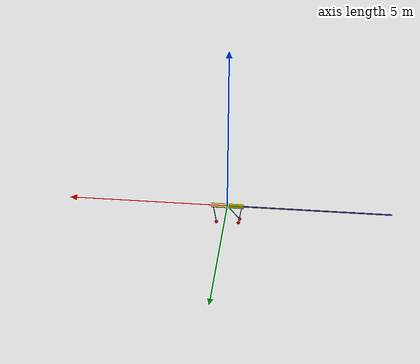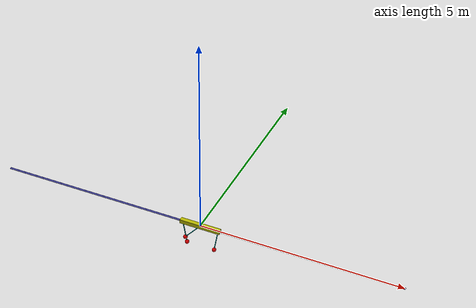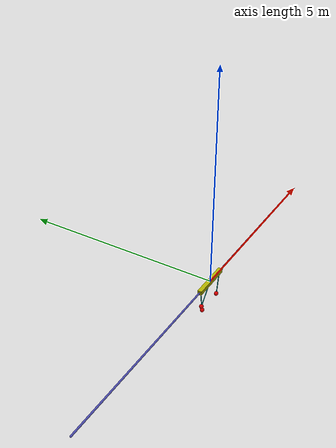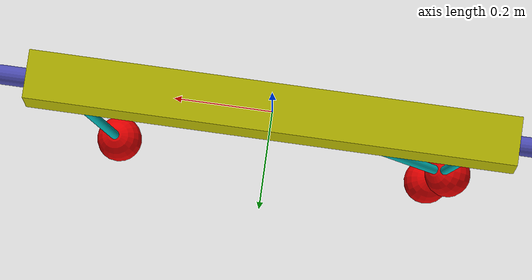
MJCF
<mujoco model="pendulum v1">
	<compiler inertiafromgeom="true"/>
	<default>
		<joint armature="0" damping="0" limited="true" />
		<!--friction=[滑り摩擦，ねじり摩擦，転がり摩擦]-->
		<geom contype="0" rgba="0.7 0.7 0 1" friction="0 0 0" condim="1"/>
		<tendon/>
		<motor ctrlrange="-3 3"/>
	</default>
	<option gravity="0 0 -9.81" integrator="RK4" timestep="0.02"/>
	<size nstack="3000"/>
	<worldbody>
		<geom name="rail" pos="0 0 0" quat="0.707 0 0.707 0" rgba="0.3 0.3 0.7 1" size="0.02 5" type="capsule"/>
		<body name="cart" pos="0 0 0" >
			<joint axis="1 0 0" damping="1" limited="true" name="slider" pos="0 0 0" range="-1 1" type="slide" frictionloss="0"/>
			<geom name="cart" pos="0 0 0" quat="0.707 0 0.707 0" size="0.05 0.05 .5" type="box" density="500"/>
			<body name="pole1" pos="-0.45 0 0" euler="0 -10 0">
				<joint axis="0 -1 0" name="hinge2" pos="0 0.5 0" range="-180 180" type="hinge"/>
				<geom pos="0 0 -0.3" name="cpole2" rgba="0 0.7 0.7 1" size="0.01 0.3" type="capsule" />
				<body name="toe2" pos="0 0 -0.6"/>
					<geom pos="0 0 -0.6" name="ball2" size="0.05" rgba="0.9 0 0 1" type="sphere" density="1000"/> <!--sphereのサイズは半径指定-->
			</body>
			<body name="pole2" pos="0 0 0" euler="0 40 0">
				<joint axis="0 -1 0" name="hinge3" pos="0 0.5 0" range="-180 180" type="hinge"/>
				<geom pos="0 0 -0.3" name="cpole3" rgba="0 0.7 0.7 1" size="0.01 0.3" type="capsule" />
				<body name="toe3" pos="0 0 -0.6"/>
					<geom pos="0 0 -.6" name="ball3" size="0.05 0.05" rgba="0.9 0 0 1" type="sphere" density="1000"/>
			</body>
			<body name="pole3" pos="0.45 0 0" euler="0 10 0">
				<joint axis="0 -1 0" name="hinge4" pos="0 0.5 0" range="-180 180" type="hinge"/>
				<geom pos="0 0 -0.3" name="cpole4" rgba="0 0.7 0.7 1" size="0.01 0.3" type="capsule" />
				<body name="toe4" pos="0 0 -0.6"/>
					<geom pos="0 0 -.6" name="ball4" size="0.05 0.05" rgba="0.9 0 0 1" type="sphere" density="1000"/>
			</body>

		</body>
	</worldbody>
	<actuator>
		<motor gear="1000" joint="slider" name="slide"/>
	</actuator>
</mujoco>
